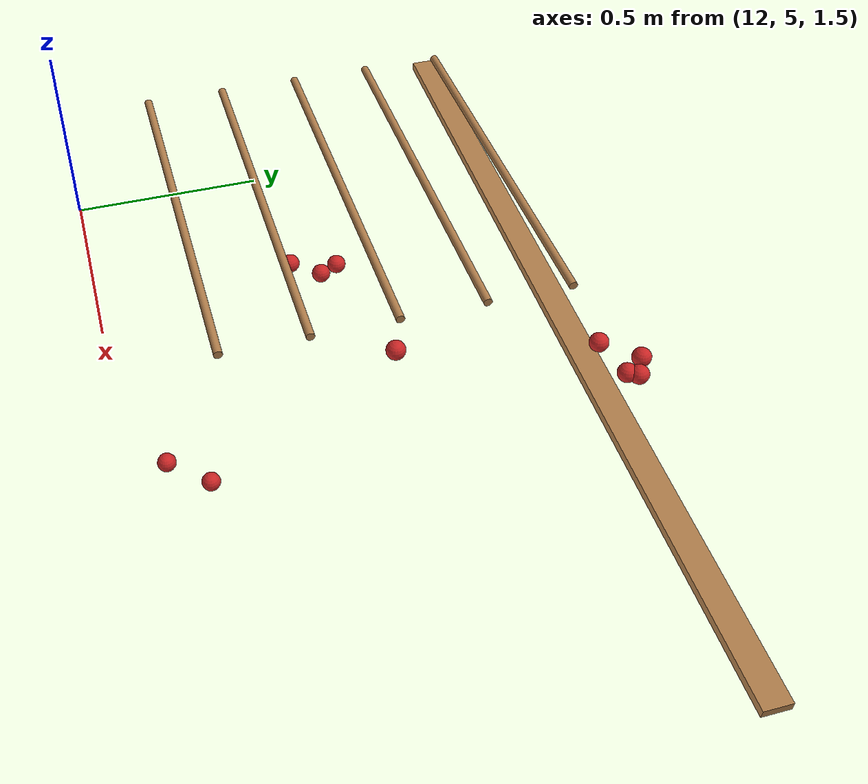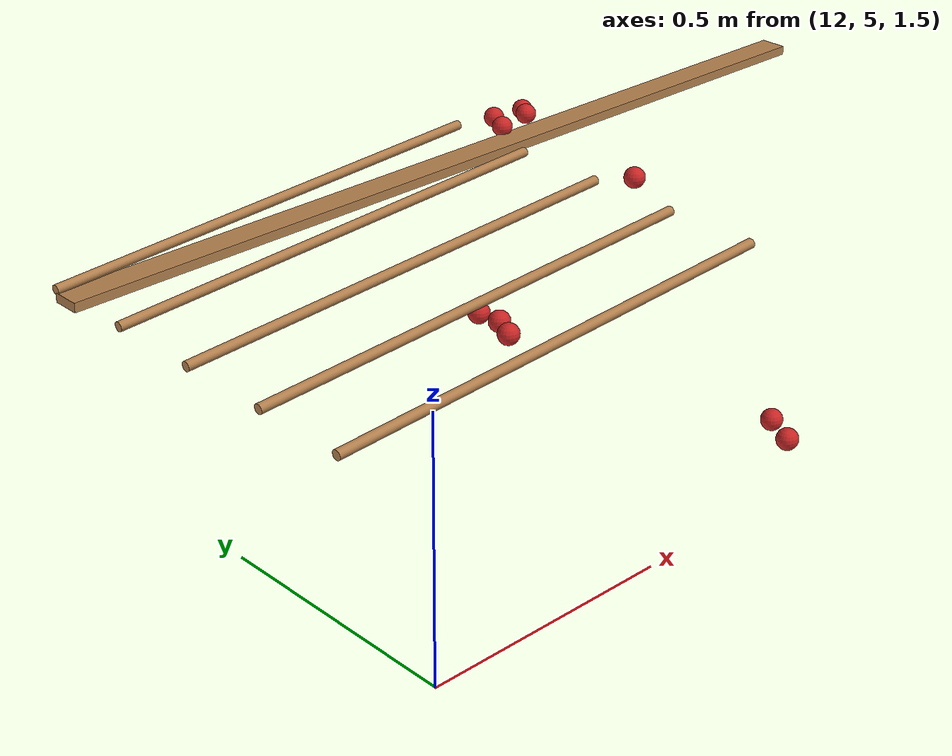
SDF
<sdf version="1.4">
 <model name="pergola">
  <link name="beam_69">
   <pose>13.0 6.0 1.81 0 0 0</pose>
   <collision name="collision"><geometry><box><size>2.0 0.06 0.02</size></box></geometry></collision>
   <visual name="visual">
    <geometry><box><size>2.0 0.06 0.02</size></box></geometry>
    <material><script><name>Gazebo/Wood</name></script></material>
   </visual>
   <inertial>
    <mass>5</mass>
    <inertia>
     <ixx>0.0016666666666666668</ixx>
     <ixy>0.0</ixy>
     <ixz>0.0</ixz>
     <iyy>1.6681666666666664</iyy>
     <iyz>0.0</iyz>
     <izz>1.6668333333333332</izz>
    </inertia>
   </inertial>
  </link>
  <link name="vine_1252">
   <pose>12.5 5.23 1.85 0 1.5208379310729538 0</pose>
   <collision name="collision">
    <geometry><cylinder><radius>0.01</radius><length>1.0012492197250393</length></cylinder></geometry>
   </collision>
   <visual name="visual">
    <geometry><cylinder><radius>0.01</radius><length>1.0012492197250393</length></cylinder></geometry>
    <material><script><name>Gazebo/WoodFloor</name></script></material>
   </visual>
   <inertial>
    <mass>5</mass>
    <inertia>
     <ixx>0.41783333333333345</ixx>
     <ixy>0.0</ixy>
     <ixz>0.0</ixz>
     <iyy>0.41783333333333345</iyy>
     <iyz>0.0</iyz>
     <izz>0.00025</izz>
    </inertia>
   </inertial>
  </link>
  <link name="vine_1254">
   <pose>12.5 5.430000000000001 1.85 0 1.5208379310729538 0</pose>
   <collision name="collision">
    <geometry><cylinder><radius>0.01</radius><length>1.0012492197250393</length></cylinder></geometry>
   </collision>
   <visual name="visual">
    <geometry><cylinder><radius>0.01</radius><length>1.0012492197250393</length></cylinder></geometry>
    <material><script><name>Gazebo/WoodFloor</name></script></material>
   </visual>
   <inertial>
    <mass>5</mass>
    <inertia>
     <ixx>0.41783333333333345</ixx>
     <ixy>0.0</ixy>
     <ixz>0.0</ixz>
     <iyy>0.41783333333333345</iyy>
     <iyz>0.0</iyz>
     <izz>0.00025</izz>
    </inertia>
   </inertial>
  </link>
  <link name="vine_1256">
   <pose>12.5 5.630000000000001 1.85 0 1.5208379310729538 0</pose>
   <collision name="collision">
    <geometry><cylinder><radius>0.01</radius><length>1.0012492197250393</length></cylinder></geometry>
   </collision>
   <visual name="visual">
    <geometry><cylinder><radius>0.01</radius><length>1.0012492197250393</length></cylinder></geometry>
    <material><script><name>Gazebo/WoodFloor</name></script></material>
   </visual>
   <inertial>
    <mass>5</mass>
    <inertia>
     <ixx>0.41783333333333345</ixx>
     <ixy>0.0</ixy>
     <ixz>0.0</ixz>
     <iyy>0.41783333333333345</iyy>
     <iyz>0.0</iyz>
     <izz>0.00025</izz>
    </inertia>
   </inertial>
  </link>
  <link name="vine_1258">
   <pose>12.5 5.830000000000001 1.85 0 1.5208379310729538 0</pose>
   <collision name="collision">
    <geometry><cylinder><radius>0.01</radius><length>1.0012492197250393</length></cylinder></geometry>
   </collision>
   <visual name="visual">
    <geometry><cylinder><radius>0.01</radius><length>1.0012492197250393</length></cylinder></geometry>
    <material><script><name>Gazebo/WoodFloor</name></script></material>
   </visual>
   <inertial>
    <mass>5</mass>
    <inertia>
     <ixx>0.41783333333333345</ixx>
     <ixy>0.0</ixy>
     <ixz>0.0</ixz>
     <iyy>0.41783333333333345</iyy>
     <iyz>0.0</iyz>
     <izz>0.00025</izz>
    </inertia>
   </inertial>
  </link>
  <link name="vine_1260">
   <pose>12.5 6.03 1.85 0 1.5208379310729538 0</pose>
   <collision name="collision">
    <geometry><cylinder><radius>0.01</radius><length>1.0012492197250393</length></cylinder></geometry>
   </collision>
   <visual name="visual">
    <geometry><cylinder><radius>0.01</radius><length>1.0012492197250393</length></cylinder></geometry>
    <material><script><name>Gazebo/WoodFloor</name></script></material>
   </visual>
   <inertial>
    <mass>5</mass>
    <inertia>
     <ixx>0.41783333333333345</ixx>
     <ixy>0.0</ixy>
     <ixz>0.0</ixz>
     <iyy>0.41783333333333345</iyy>
     <iyz>0.0</iyz>
     <izz>0.00025</izz>
    </inertia>
   </inertial>
  </link>
  <link name="fruit_12">
   <pose>13.078065484771933 5.59621736496073 1.8687089447263157 0 0 0</pose>
   <collision name="fruit_collision_12"><geometry><sphere><radius>0.022</radius></sphere></geometry></collision>
   <visual name="visual">
    <geometry><sphere><radius>0.022</radius></sphere></geometry>
    <material><script><name>Gazebo/Red</name></script></material>
   </visual>
   <inertial>
    <mass>0.05</mass>
    <inertia>
     <ixx>9.679999999999999e-06</ixx>
     <ixy>0.0</ixy>
     <ixz>0.0</ixz>
     <iyy>9.679999999999999e-06</iyy>
     <iyz>0.0</iyz>
     <izz>9.679999999999999e-06</izz>
    </inertia>
   </inertial>
   <sensor name="fruit_contact_12" type="contact">
    <contact><collision>fruit_collision_12</collision></contact>
   </sensor>
  </link>
  <link name="fruit_137">
   <pose>12.612054770029978 5.472176615481161 1.7302352999785513 0 0 0</pose>
   <collision name="fruit_collision_137"><geometry><sphere><radius>0.022</radius></sphere></geometry></collision>
   <visual name="visual">
    <geometry><sphere><radius>0.022</radius></sphere></geometry>
    <material><script><name>Gazebo/Red</name></script></material>
   </visual>
   <inertial>
    <mass>0.05</mass>
    <inertia>
     <ixx>9.679999999999999e-06</ixx>
     <ixy>0.0</ixy>
     <ixz>0.0</ixz>
     <iyy>9.679999999999999e-06</iyy>
     <iyz>0.0</iyz>
     <izz>9.679999999999999e-06</izz>
    </inertia>
   </inertial>
   <sensor name="fruit_contact_137" type="contact">
    <contact><collision>fruit_collision_137</collision></contact>
   </sensor>
  </link>
  <link name="fruit_259">
   <pose>12.973052542215761 5.090384564514592 1.5255743516287077 0 0 0</pose>
   <collision name="fruit_collision_259"><geometry><sphere><radius>0.022</radius></sphere></geometry></collision>
   <visual name="visual">
    <geometry><sphere><radius>0.022</radius></sphere></geometry>
    <material><script><name>Gazebo/Red</name></script></material>
   </visual>
   <inertial>
    <mass>0.05</mass>
    <inertia>
     <ixx>9.679999999999999e-06</ixx>
     <ixy>0.0</ixy>
     <ixz>0.0</ixz>
     <iyy>9.679999999999999e-06</iyy>
     <iyz>0.0</iyz>
     <izz>9.679999999999999e-06</izz>
    </inertia>
   </inertial>
   <sensor name="fruit_contact_259" type="contact">
    <contact><collision>fruit_collision_259</collision></contact>
   </sensor>
  </link>
  <link name="fruit_353">
   <pose>13.1373790950991 6.038586874410672 1.831187450982159 0 0 0</pose>
   <collision name="fruit_collision_353"><geometry><sphere><radius>0.022</radius></sphere></geometry></collision>
   <visual name="visual">
    <geometry><sphere><radius>0.022</radius></sphere></geometry>
    <material><script><name>Gazebo/Red</name></script></material>
   </visual>
   <inertial>
    <mass>0.05</mass>
    <inertia>
     <ixx>9.679999999999999e-06</ixx>
     <ixy>0.0</ixy>
     <ixz>0.0</ixz>
     <iyy>9.679999999999999e-06</iyy>
     <iyz>0.0</iyz>
     <izz>9.679999999999999e-06</izz>
    </inertia>
   </inertial>
   <sensor name="fruit_contact_353" type="contact">
    <contact><collision>fruit_collision_353</collision></contact>
   </sensor>
  </link>
  <link name="fruit_604">
   <pose>13.037242642793379 5.179733607460687 1.5050843929888613 0 0 0</pose>
   <collision name="fruit_collision_604"><geometry><sphere><radius>0.022</radius></sphere></geometry></collision>
   <visual name="visual">
    <geometry><sphere><radius>0.022</radius></sphere></geometry>
    <material><script><name>Gazebo/Red</name></script></material>
   </visual>
   <inertial>
    <mass>0.05</mass>
    <inertia>
     <ixx>9.679999999999999e-06</ixx>
     <ixy>0.0</ixy>
     <ixz>0.0</ixz>
     <iyy>9.679999999999999e-06</iyy>
     <iyz>0.0</iyz>
     <izz>9.679999999999999e-06</izz>
    </inertia>
   </inertial>
   <sensor name="fruit_contact_604" type="contact">
    <contact><collision>fruit_collision_604</collision></contact>
   </sensor>
  </link>
  <link name="fruit_622">
   <pose>13.243830063870877 6.085694949447647 1.8284603446332834 0 0 0</pose>
   <collision name="fruit_collision_622"><geometry><sphere><radius>0.022</radius></sphere></geometry></collision>
   <visual name="visual">
    <geometry><sphere><radius>0.022</radius></sphere></geometry>
    <material><script><name>Gazebo/Red</name></script></material>
   </visual>
   <inertial>
    <mass>0.05</mass>
    <inertia>
     <ixx>9.679999999999999e-06</ixx>
     <ixy>0.0</ixy>
     <ixz>0.0</ixz>
     <iyy>9.679999999999999e-06</iyy>
     <iyz>0.0</iyz>
     <izz>9.679999999999999e-06</izz>
    </inertia>
   </inertial>
   <sensor name="fruit_contact_622" type="contact">
    <contact><collision>fruit_collision_622</collision></contact>
   </sensor>
  </link>
  <link name="fruit_643">
   <pose>13.232595670128115 6.063230863578132 1.8280471757333687 0 0 0</pose>
   <collision name="fruit_collision_643"><geometry><sphere><radius>0.022</radius></sphere></geometry></collision>
   <visual name="visual">
    <geometry><sphere><radius>0.022</radius></sphere></geometry>
    <material><script><name>Gazebo/Red</name></script></material>
   </visual>
   <inertial>
    <mass>0.05</mass>
    <inertia>
     <ixx>9.679999999999999e-06</ixx>
     <ixy>0.0</ixy>
     <ixz>0.0</ixz>
     <iyy>9.679999999999999e-06</iyy>
     <iyz>0.0</iyz>
     <izz>9.679999999999999e-06</izz>
    </inertia>
   </inertial>
   <sensor name="fruit_contact_643" type="contact">
    <contact><collision>fruit_collision_643</collision></contact>
   </sensor>
  </link>
  <link name="fruit_656">
   <pose>12.65222167874343 5.538598846728633 1.7177475635821227 0 0 0</pose>
   <collision name="fruit_collision_656"><geometry><sphere><radius>0.022</radius></sphere></geometry></collision>
   <visual name="visual">
    <geometry><sphere><radius>0.022</radius></sphere></geometry>
    <material><script><name>Gazebo/Red</name></script></material>
   </visual>
   <inertial>
    <mass>0.05</mass>
    <inertia>
     <ixx>9.679999999999999e-06</ixx>
     <ixy>0.0</ixy>
     <ixz>0.0</ixz>
     <iyy>9.679999999999999e-06</iyy>
     <iyz>0.0</iyz>
     <izz>9.679999999999999e-06</izz>
    </inertia>
   </inertial>
   <sensor name="fruit_contact_656" type="contact">
    <contact><collision>fruit_collision_656</collision></contact>
   </sensor>
  </link>
  <link name="fruit_765">
   <pose>13.188766101726086 6.11818596345588 1.815641902315666 0 0 0</pose>
   <collision name="fruit_collision_765"><geometry><sphere><radius>0.022</radius></sphere></geometry></collision>
   <visual name="visual">
    <geometry><sphere><radius>0.022</radius></sphere></geometry>
    <material><script><name>Gazebo/Red</name></script></material>
   </visual>
   <inertial>
    <mass>0.05</mass>
    <inertia>
     <ixx>9.679999999999999e-06</ixx>
     <ixy>0.0</ixy>
     <ixz>0.0</ixz>
     <iyy>9.679999999999999e-06</iyy>
     <iyz>0.0</iyz>
     <izz>9.679999999999999e-06</izz>
    </inertia>
   </inertial>
   <sensor name="fruit_contact_765" type="contact">
    <contact><collision>fruit_collision_765</collision></contact>
   </sensor>
  </link>
  <link name="fruit_930">
   <pose>12.63821900768256 5.580406172715577 1.7252948811071265 0 0 0</pose>
   <collision name="fruit_collision_930"><geometry><sphere><radius>0.022</radius></sphere></geometry></collision>
   <visual name="visual">
    <geometry><sphere><radius>0.022</radius></sphere></geometry>
    <material><script><name>Gazebo/Red</name></script></material>
   </visual>
   <inertial>
    <mass>0.05</mass>
    <inertia>
     <ixx>9.679999999999999e-06</ixx>
     <ixy>0.0</ixy>
     <ixz>0.0</ixz>
     <iyy>9.679999999999999e-06</iyy>
     <iyz>0.0</iyz>
     <izz>9.679999999999999e-06</izz>
    </inertia>
   </inertial>
   <sensor name="fruit_contact_930" type="contact">
    <contact><collision>fruit_collision_930</collision></contact>
   </sensor>
  </link>
 </model>
</sdf>
